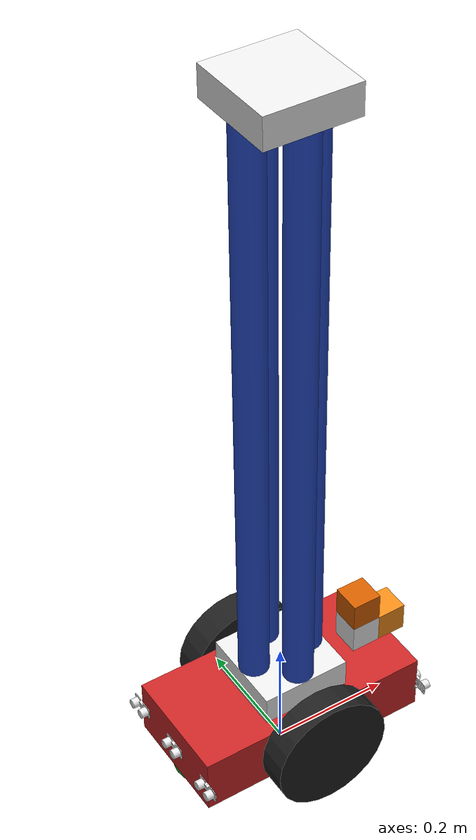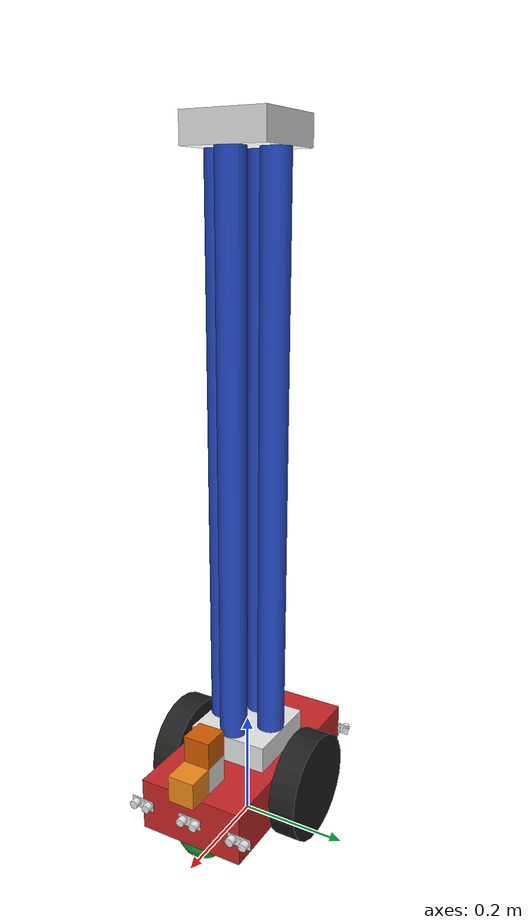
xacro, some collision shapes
<?xml version='1.0'?>

<robot name="rawbot" xmlns:xacro="http://www.ros.org/wiki/xacro">
    <xacro:include filename="$(find test_slam)/urdf/rawbot.gazebo.xacro" />
    <xacro:include filename="$(find test_slam)/urdf/common_properties.xacro"/>
    <xacro:include filename="$(find test_slam)/urdf/uvc.macro.xacro"/>
    <xacro:include filename="$(find test_slam)/urdf/sonar.macro.xacro"/>

    <link name="base_footprint"/>
    <joint name="base_joint" type="fixed">
        <origin xyz="0 0 0.1" rpy="0 0 0" />
        <parent link="base_footprint"/>
        <child link="base_link" />
    </joint>

    <!--Main robot chasis i.e base_link-->
    <link name='base_link'>
        <inertial>
            <mass value="15.0"/>
            <origin xyz="0 0 0" rpy=" 0 0 0"/>
            <inertia
                ixx="0.1" ixy="0" ixz="0"
                iyy="0.1" iyz="0"
                izz="0.1" />
        </inertial>
        <collision>
            <origin xyz="0 0 0" rpy=" 0 0 0"/>
            <geometry>
                <box size=".4 .2 .1"/>
            </geometry>
        </collision>
        <visual>
            <origin xyz="0 0 0" rpy=" 0 0 0"/>
            <geometry>
                <box size=".4 .2 .1"/>
            </geometry>
            <material name="red"/>
        </visual>
        <collision>
            <origin xyz="-0.15 0 -0.05" rpy=" 0 0 0"/>
            <geometry>
                <sphere radius="0.0499"/>
            </geometry>
        </collision>
        <visual> <!--back_caster_visual-->
            <origin xyz="-0.15 0 -0.05" rpy=" 0 0 0"/>
            <geometry>
                <sphere radius="0.05"/>
            </geometry>
            <material name="green"/><!--Doesn't work here-->
        </visual>
        <collision>
            <origin xyz="0.15 0 -0.05" rpy=" 0 0 0"/>
            <geometry>
                <sphere radius="0.0499"/>
            </geometry>
        </collision>
        <visual><!--front_caster_visual-->
            <origin xyz="0.15 0 -0.05" rpy=" 0 0 0"/>
            <geometry>
                <sphere radius="0.05"/>
            </geometry>
            <material name="green"/><!--Doesn't work here-->
        </visual>
    </link>

    <!--uvc-->
    <xacro:cuboid name="uvc_support1" origin_xyz="0 0 0.075" box_size=".15 .15 .05"/>
    <xacro:uvc_link name="uvc1" origin_xyz="0.05 0 0.6"/>
    <xacro:uvc_link name="uvc2" origin_xyz="0 0.05 0.6"/>
    <xacro:uvc_link name="uvc3" origin_xyz="-0.05 0 0.6"/>
    <xacro:uvc_link name="uvc4" origin_xyz="0 -0.05 0.6"/>
    <xacro:cuboid name="uvc_support2" origin_xyz="0 0 1.125" box_size=".15 .15 .05"/>

    <!--wheel_left_link-->
    <link name="wheel_left_link">
        <inertial>
            <mass value="5.0"/>
            <origin xyz="0 0 0" rpy=" 0 1.5707 1.5707"/>
            <inertia
                ixx="0.1" ixy="0" ixz="0"
                iyy="0.1" iyz="0"
                izz="0.1"
            />
        </inertial>
        <collision>
            <origin xyz="0 0 0" rpy=" 0 1.5707 1.5707"/>
            <geometry>
                <cylinder length="0.05" radius="0.1"/>
            </geometry>
        </collision>
        <visual>
            <origin xyz="0 0 0" rpy=" 0 1.5707 1.5707"/>
            <geometry>
                <cylinder length="0.05" radius="0.1"/>
            </geometry>
            <material name="dark"/>
        </visual>
    </link>

    <joint name="wheel_left_joint" type="continuous" >
        <origin xyz="0 0.126 0" rpy="0 0 0"/>
        <child link="wheel_left_link"/>
        <parent link="base_link"/>
        <axis xyz="0 1 0" rpy="0 0 0"/>
        <limit effort="10000" velocity="1000"/>
        <dynamics damping="1.0" friction="1.0"/>
    </joint>

    <!--wheel_right_link-->
    <link name="wheel_right_link">
        <inertial>
            <mass value="5.0"/>
            <origin xyz="0.0 0 0" rpy="0 1.5707 1.5707"/>
            <inertia
                ixx="0.1" ixy="0" ixz="0"
                iyy="0.1" iyz="0"
                izz="0.1"/>
        </inertial>
        <visual>
            <origin xyz="0 0 0" rpy="0 1.5707 1.5707"/>
            <geometry>
                <cylinder radius="0.1" length="0.05"/>
            </geometry>
            <material name="dark"/>
        </visual>
        <collision>
            <origin xyz="0 0 0" rpy="0 1.5707 1.5707" />
            <geometry>
                <cylinder radius="0.1" length="0.05"/>
            </geometry>
        </collision>
    </link>

    <joint name="wheel_right_joint" type="continuous" >
        <origin xyz="0 -0.126 0" rpy="0 0 0"/>
        <child link="wheel_right_link"/>
        <parent link="base_link"/>
        <axis xyz="0 1 0" rpy="0 0 0"/>
        <limit effort="10000" velocity="1000"/>
        <dynamics damping="1.0" friction="1.0"/>
    </joint>

    <!--camera_link-->
    <link name="camera_link">
        <inertial>
            <mass value="0.1"/>
            <origin xyz="0 0 0" rpy="0 0 0"/>
            <inertia
                ixx="1e-6" ixy="0" ixz="0"
                iyy="1e-6" iyz="0"
                izz="1e-6"/>
        </inertial>
        <visual>
            <origin xyz="0 0 0" rpy="0 0 0"/>
            <geometry>
                <box size="0.05 0.05 0.05"/>
            </geometry>
            <material name="orange"/>
        </visual>
        <collision>
            <origin xyz="0 0 0" rpy="0 0 0" />
            <geometry>
                <box size="0.05 0.05 0.05"/>
            </geometry>
        </collision>
    </link>

    <joint name="camera_joint" type="fixed" >
        <origin xyz="0.2 0 0.075" rpy="0 0 0"/>
        <child link="camera_link"/>
        <parent link="base_link"/>
        <axis xyz="0 1 0" rpy="0 0 0"/>
    </joint>

    <joint name="camera_optical_joint" type="fixed">
        <origin xyz="0 0 0" rpy="-1.5707 0 -1.5707"/>
        <parent link="camera_link"/>
        <child link="camera_link_optical"/>
    </joint>

    <link name="camera_link_optical"/>

    <!--LIDAR-->
    <xacro:cuboid name="lidar_support" origin_xyz="0.15 0 0.075" box_size=".05 .05 .05"/>
    <link name="base_scan">
        <inertial>
            <mass value="1e-5"/>
            <origin xyz="0 0 0" rpy="0 0 0"/>
            <inertia
                ixx="1e-6" ixy="0" ixz="0"
                iyy="1e-6" iyz="0"
                izz="1e-6"/>
        </inertial>

        <visual>
            <origin xyz="0 0 0" rpy="0 0 0"/>
            <geometry>
                <mesh filename="package://test_slam/meshes/sensors/hokuyo.dae"/>
            </geometry>
        </visual>

        <collision>
            <origin xyz="0 0 0" rpy="0 0 0" />
            <geometry>
                <box size="0.05 0.05 0.05"/>
            </geometry>
        </collision>
    </link>

    <joint type="fixed" name="scan_joint">
        <origin xyz="0.15 0 0.125" rpy="0 0 0"/>
        <child link="base_scan"/>
        <parent link="base_link"/>
        <axis xyz="0 1 0" rpy="0 0 0"/>
    </joint>

    <!-- SONAR -->
    <xacro:sonar name="fl_sonar" origin_xyz="0.2 0.1 0.0" origin_rpy="0 0 0"/>
    <xacro:sonar name="fc_sonar" origin_xyz="0.2 0.0 0.0" origin_rpy="0 0 0"/>
    <xacro:sonar name="fr_sonar" origin_xyz="0.2 -0.1 0.0" origin_rpy="0 0 0"/>
    <xacro:sonar name="bl_sonar" origin_xyz="-0.2 0.1 0.0" origin_rpy="0 0 3.14"/>
    <xacro:sonar name="bc_sonar" origin_xyz="-0.2 0.0 0.0" origin_rpy="0 0 3.14"/>
    <xacro:sonar name="br_sonar" origin_xyz="-0.2 -0.1 0.0" origin_rpy="0 0 3.14"/>

    <gazebo reference="camera_link">
        <material>Gazebo/Orange</material>
    </gazebo>

</robot>

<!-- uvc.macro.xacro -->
<robot xmlns:xacro="http://www.ros.org/wiki/xacro">

    <xacro:macro name="cuboid" params="name origin_xyz box_size">
        <!--uvc_support-->
        <link name="${name}_link">
            <inertial>
                <mass value="1.0"/>
                <origin xyz="0 0 0" rpy=" 0 0 0"/>
                <inertia
                    ixx="0.1" ixy="0" ixz="0"
                    iyy="0.1" iyz="0"
                    izz="0.1" />
            </inertial>
            <collision>
                <origin xyz="0.0 0 0" rpy=" 0 0 0"/>
                <geometry>
                    <box size="${box_size}"/>
                </geometry>
            </collision>
            <visual>
                <origin xyz="0.0 0 0" rpy=" 0 0 0"/>
                <geometry>
                    <box size="${box_size}"/>
                </geometry>
                <material name="white"/>
            </visual>
        </link>
        <joint name="${name}_joint" type="fixed">
            <origin xyz="${origin_xyz}" rpy="0 0 0" />
            <parent link="base_link"/>
            <child link="${name}_link" />
        </joint>
        <gazebo reference="${name}_link">
            <material>Gazebo/Green</material>
        </gazebo>
    </xacro:macro>

    <xacro:macro name="uvc_link" params="name origin_xyz" >
        <link name="${name}_link">
            <inertial>
                <mass value="1.0"/>
                <origin xyz="0 0 0" rpy=" 0 0 0"/>
                <inertia
                    ixx="0.1" ixy="0" ixz="0"
                    iyy="0.1" iyz="0"
                    izz="0.1"
                />
            </inertial>
            <collision>
                <origin xyz="0 0 0" rpy=" 0 0 0"/>
                <geometry>
                    <cylinder length="1.0" radius="0.025"/>
                </geometry>
            </collision>
            <visual>
                <origin xyz="0 0 0" rpy=" 0 0 0"/>
                <geometry>
                    <cylinder length="1.0" radius="0.025"/>
                </geometry>
                <material name="blue"/>
            </visual>
        </link>
        <joint name="${name}_joint" type="fixed">
            <origin xyz="${origin_xyz}" rpy="0 0 0" />
            <parent link="base_link"/>
            <child link="${name}_link" />
        </joint>
        <gazebo reference="${name}_link">
            <material>Gazebo/Blue</material>
        </gazebo>
    </xacro:macro>

</robot>

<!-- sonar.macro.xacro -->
<robot xmlns:xacro="http://www.ros.org/wiki/xacro">

    <xacro:macro name="sonar" params="name origin_xyz origin_rpy">
        <link name="${name}_link">
            <inertial>
                <origin xyz="0.0025756 0 0" rpy="0 0 0" />
                <mass value="0.0038351" />
                <inertia
                    ixx="7.6874E-07"
                    ixy="-8.544E-10"
                    ixz="-2.6508E-09"
                    iyy="1.5936E-07"
                    iyz="3.4084E-09"
                    izz="7.2621E-07" />
            </inertial>
            <visual>
                <origin xyz="0.001 -0.022557 0.01023" rpy="0 0 0" />
                <geometry>
                    <mesh filename="package://test_slam/meshes/sensors/range_sensor.STL" />
                </geometry>
                <material name="white"/>
            </visual>
            <collision>
                <origin xyz="-0.1 0 0" rpy="0 0 0" />
                <geometry>
                    <box size="0.02 0.05 0.02"/>
                </geometry>
            </collision>
        </link>
        <joint name="${name}_joint" type="fixed">
            <origin xyz="${origin_xyz}" rpy="${origin_rpy}" />
            <parent link="base_link" />
            <child link="${name}_link" />
            <axis xyz="0 0 0" />
        </joint>

        <gazebo reference="${name}_link">
            <sensor type="ray" name="${name}">
                <pose>0 0 0 0 0 0</pose>
                <visualize>true</visualize>
                <update_rate>5</update_rate>
                <ray>
                    <scan>
                        <horizontal>
                        <samples>5</samples>
                        <resolution>1</resolution>
                        <min_angle>-0.09</min_angle>
                        <max_angle>0.09</max_angle>
                        </horizontal>
                        <vertical>
                        <samples>5</samples>
                        <resolution>1</resolution>
                        <min_angle>-0.09</min_angle>
                        <max_angle>0.09</max_angle>
                        </vertical>
                    </scan>
                    <range>
                        <min>0.02</min>
                        <max>4</max>
                        <resolution>0.01</resolution>
                    </range>
                </ray>
                <plugin filename="libgazebo_ros_range.so" name="gazebo_ros_range">
                    <gaussianNoise>0.005</gaussianNoise>
                    <alwaysOn>true</alwaysOn>
                    <updateRate>5</updateRate>
                    <topicName>${name}</topicName>
                    <frameName>${name}_link</frameName>
                    <radiation>ULTRASOUND</radiation>
                    <fov>0.2</fov>
                </plugin>
            </sensor>
        </gazebo>
    </xacro:macro>

</robot>
